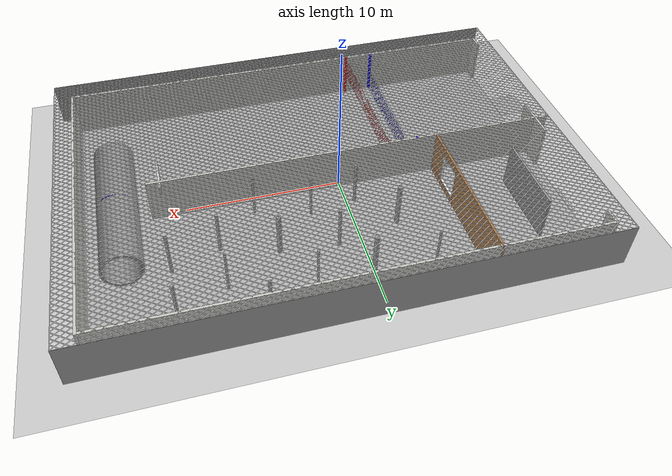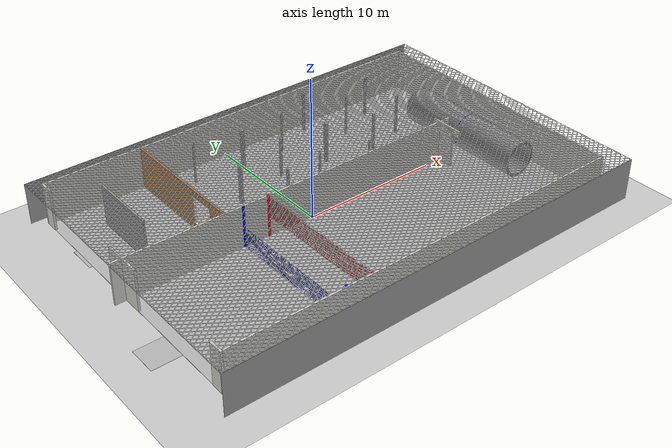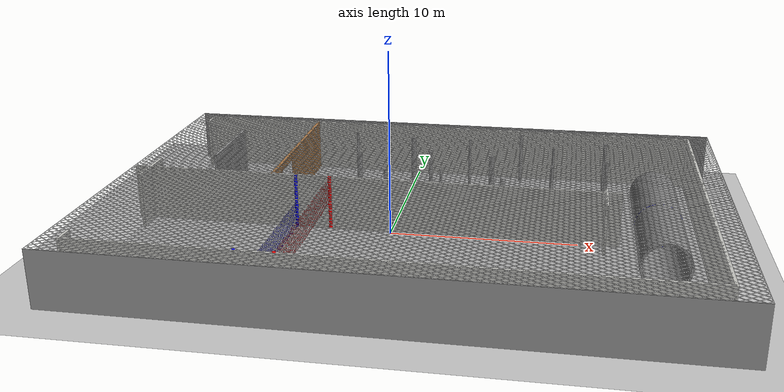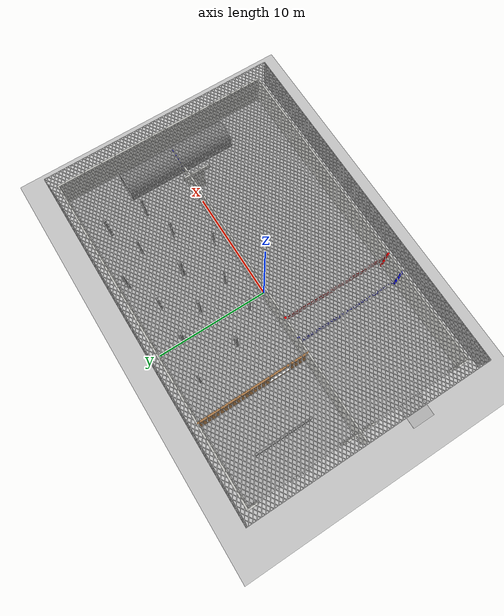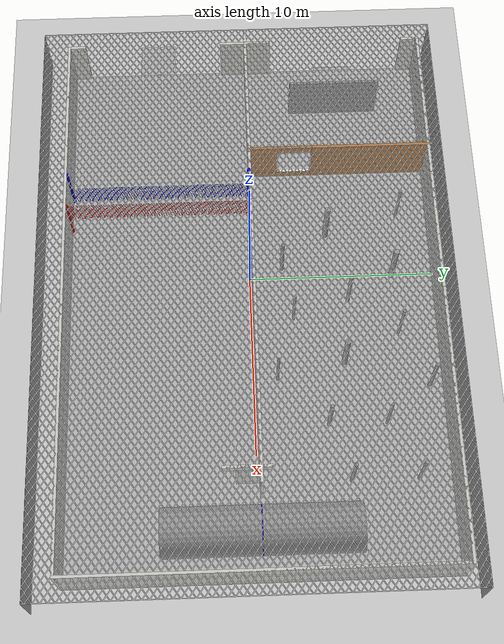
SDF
<sdf version="1.6">
 <world name="default">
  <light name="sun" type="directional">
   <pose>0 0 10 0 -0 0</pose>
   <diffuse>0.8 0.8 0.8 1</diffuse>
   <specular>0.1 0.1 0.1 1</specular>
   <attenuation>
    <range>1000</range>
    <constant>0.9</constant>
    <linear>0.01</linear>
    <quadratic>0.001</quadratic>
   </attenuation>
   <direction>-0.1 0.1 -1</direction>
  </light>
  <model name="ground_plane">
   <static>1</static>
   <link name="link">
    <collision name="collision">
     <geometry><plane><normal>0 0 1</normal><size>100 100</size></plane></geometry>
     <surface><friction><ode><mu>100</mu><mu2>50</mu2></ode></friction></surface>
    </collision>
    <visual name="visual">
     <cast_shadows>0</cast_shadows>
     <geometry><plane><normal>0 0 1</normal><size>100 100</size></plane></geometry>
     <material>
      <script><uri>file://media/materials/scripts/gazebo.material</uri><name>Gazebo/Grey</name></script>
     </material>
    </visual>
   </link>
  </model>
  <gravity>0 0 -9.8</gravity>
  <magnetic_field>6e-06 2.3e-05 -4.2e-05</magnetic_field>
  <atmosphere type="adiabatic"/>
  <physics name="default_physics" default="0" type="ode">
   <max_step_size>0.001</max_step_size>
   <real_time_factor>1</real_time_factor>
   <real_time_update_rate>1000</real_time_update_rate>
  </physics>
  <scene><ambient>0.4 0.4 0.4 1</ambient><background>0.7 0.7 0.7 1</background><shadows>1</shadows></scene>
  <spherical_coordinates>
   <surface_model>EARTH_WGS84</surface_model>
   <latitude_deg>0</latitude_deg>
   <longitude_deg>0</longitude_deg>
   <elevation>0</elevation>
   <heading_deg>0</heading_deg>
  </spherical_coordinates>
  <model name="my_ground_plane">
   <static>1</static>
   <link name="link">
    <collision name="collision">
     <geometry><plane><normal>0 0 1</normal><size>30 20</size></plane></geometry>
     <surface><friction><ode><mu>100</mu><mu2>50</mu2></ode></friction></surface>
    </collision>
    <visual name="visual">
     <cast_shadows>0</cast_shadows>
     <geometry><plane><normal>0 0 1</normal><size>30 20</size></plane></geometry>
     <material>
      <script>
       <uri>model://my_ground_plane/materials/scripts_30</uri>
       <uri>model://my_ground_plane/materials/textures/</uri>
       <name>MyGroundPlane/Image</name>
      </script>
     </material>
    </visual>
   </link>
   <pose>1.42327 0.152934 0 0 -0 0</pose>
  </model>
  <model name="robot_house2_0">
   <pose>1.40144 0.109939 0 0 -0 0</pose>
   <link name="Wall_0">
    <collision name="Wall_0_Collision">
     <geometry><box><size>30 0.15 3</size></box></geometry>
     <pose>0 0 1.5 0 -0 0</pose>
    </collision>
    <visual name="Wall_0_Visual">
     <pose>0 0 1.5 0 -0 0</pose>
     <geometry><box><size>30 0.15 3</size></box></geometry>
     <material>
      <script><uri>file://media/materials/scripts/gazebo.material</uri><name>Gazebo/CeilingTiled</name></script>
      <ambient>1 1 1 1</ambient>
     </material>
    </visual>
    <pose>-1e-06 9.92401 0 0 -0 0</pose>
   </link>
   <link name="Wall_1">
    <collision name="Wall_1_Collision">
     <geometry><box><size>20 0.15 3</size></box></geometry>
     <pose>0 0 1.5 0 -0 0</pose>
    </collision>
    <visual name="Wall_1_Visual">
     <pose>0 0 1.5 0 -0 0</pose>
     <geometry><box><size>20 0.15 3</size></box></geometry>
     <material>
      <script><uri>file://media/materials/scripts/gazebo.material</uri><name>Gazebo/CeilingTiled</name></script>
      <ambient>1 1 1 1</ambient>
     </material>
    </visual>
    <pose>14.925 -0.00099 0 0 0 -1.5708</pose>
   </link>
   <link name="Wall_11">
    <collision name="Wall_11_Collision">
     <geometry><box><size>1.5 0.15 3</size></box></geometry>
     <pose>0 0 1.5 0 -0 0</pose>
    </collision>
    <visual name="Wall_11_Visual">
     <pose>0 0 1.5 0 -0 0</pose>
     <geometry><box><size>1.5 0.15 3</size></box></geometry>
     <material>
      <script><uri>file://media/materials/scripts/gazebo.material</uri><name>Gazebo/CeilingTiled</name></script>
      <ambient>1 1 1 1</ambient>
     </material>
    </visual>
    <pose>-14.925 0.74901 0 0 -0 1.5708</pose>
   </link>
   <link name="Wall_14">
    <collision name="Wall_14_Collision">
     <geometry><box><size>5 0.15 3</size></box></geometry>
     <pose>0 1 1.5 0 -0 0</pose>
    </collision>
    <visual name="Wall_14_Visual">
     <pose>0 1 1.5 0 -0 0</pose>
     <geometry><box><size>5 0.15 3</size></box></geometry>
     <material>
      <script><uri>file://media/materials/scripts/gazebo.material</uri><name>Gazebo/Grey</name></script>
      <ambient>1 1 1 1</ambient>
     </material>
    </visual>
    <pose>-13.075 4.99901 0 0 0 -1.5708</pose>
   </link>
   <link name="Wall_16">
    <collision name="Wall_16_Collision">
     <geometry><box><size>1.5 0.15 3</size></box></geometry>
     <pose>0 0 1.5 0 -0 0</pose>
    </collision>
    <visual name="Wall_16_Visual">
     <pose>0 0 1.5 0 -0 0</pose>
     <geometry><box><size>1.5 0.15 3</size></box></geometry>
     <material>
      <script><uri>file://media/materials/scripts/gazebo.material</uri><name>Gazebo/CeilingTiled</name></script>
      <ambient>1 1 1 1</ambient>
     </material>
    </visual>
    <pose>-14.925 -0.60099 0 0 0 -1.5708</pose>
   </link>
   <link name="Wall_2">
    <collision name="Wall_2_Collision">
     <geometry><box><size>30 0.15 3</size></box></geometry>
     <pose>0 0 1.5 0 -0 0</pose>
    </collision>
    <visual name="Wall_2_Visual">
     <pose>0 0 1.5 0 -0 0</pose>
     <geometry><box><size>30 0.15 3</size></box></geometry>
     <material>
      <script><uri>file://media/materials/scripts/gazebo.material</uri><name>Gazebo/CeilingTiled</name></script>
      <ambient>1 1 1 1</ambient>
     </material>
    </visual>
    <pose>-1e-06 -9.92599 0 0 -0 3.14159</pose>
   </link>
   <link name="Wall_21">
    <collision name="Wall_21_Collision">
     <geometry><box><size>1.19 0.15 3</size></box></geometry>
     <pose>0 0 1.5 0 -0 0</pose>
    </collision>
    <visual name="Wall_21_Visual">
     <pose>0 0 1.5 0 -0 0</pose>
     <geometry><box><size>1.19 0.15 3</size></box></geometry>
     <material>
      <script><uri>file://media/materials/scripts/gazebo.material</uri><name>Gazebo/CeilingTiled</name></script>
      <ambient>1 1 1 1</ambient>
     </material>
    </visual>
    <pose>9.925 -0.60099 0 0 0 -1.5708</pose>
   </link>
   <link name="Wall_23">
    <collision name="Wall_23_Collision">
     <geometry><box><size>2.5 0.15 0.5</size></box></geometry>
     <pose>0 0 2.75 0 -0 0</pose>
    </collision>
    <visual name="Wall_23_Visual">
     <pose>0 0 2.75 0 -0 0</pose>
     <geometry><box><size>2.5 0.15 0.5</size></box></geometry>
     <material>
      <script><uri>file://media/materials/scripts/gazebo.material</uri><name>Gazebo/CeilingTiled</name></script>
      <ambient>1 1 1 1</ambient>
     </material>
    </visual>
    <pose>9.925 -0.60099 0 0 0 -1.5708</pose>
   </link>
   <link name="Wall_22">
    <collision name="Wall_22_Collision">
     <geometry><box><size>1 0.15 3</size></box></geometry>
     <pose>0 0 1.5 0 -0 0</pose>
    </collision>
    <visual name="Wall_22_Visual">
     <pose>0 0 1.5 0 -0 0</pose>
     <geometry><box><size>1 0.15 3</size></box></geometry>
     <material>
      <script><uri>file://media/materials/scripts/gazebo.material</uri><name>Gazebo/CeilingTiled</name></script>
      <ambient>1 1 1 1</ambient>
     </material>
    </visual>
    <pose>-14.925 -9.50099 0 0 -0 1.5708</pose>
   </link>
   <link name="Wall_5">
    <collision name="Wall_5_Collision">
     <geometry><box><size>26.5 0.15 3</size></box></geometry>
     <pose>0 0 1.5 0 -0 0</pose>
    </collision>
    <visual name="Wall_5_Visual">
     <pose>0 0 1.5 0 -0 0</pose>
     <geometry><box><size>26.5 0.15 3</size></box></geometry>
     <material>
      <script><uri>file://media/materials/scripts/gazebo.material</uri><name>Gazebo/CeilingTiled</name></script>
      <ambient>1 1 1 1</ambient>
     </material>
    </visual>
    <pose>-2.5 0.07401 0 0 -0 0</pose>
   </link>
   <link name="Wall_7">
    <pose>-7.925 5.00101 0 0 0 -1.5708</pose>
    <visual name="Wall_7_Visual_0">
     <pose>-1.7615 0 1.5 0 -0 0</pose>
     <geometry><box><size>6.477 0.15 3</size></box></geometry>
     <material>
      <script><uri>file://media/materials/scripts/gazebo.material</uri><name>Gazebo/Wood</name></script>
      <ambient>1 1 1 1</ambient>
     </material>
    </visual>
    <collision name="Wall_7_Collision_0">
     <geometry><box><size>6.477 0.15 3</size></box></geometry>
     <pose>-1.7615 0 1.5 0 -0 0</pose>
    </collision>
    <visual name="Wall_7_Visual_1">
     <pose>3.2385 0 0.225 0 -0 0</pose>
     <geometry><box><size>3.523 0.15 0.45</size></box></geometry>
     <material>
      <script><uri>file://media/materials/scripts/gazebo.material</uri><name>Gazebo/Wood</name></script>
      <ambient>1 1 1 1</ambient>
     </material>
    </visual>
    <collision name="Wall_7_Collision_1">
     <geometry><box><size>3.523 0.15 0.45</size></box></geometry>
     <pose>3.2385 0 0.225 0 -0 0</pose>
    </collision>
    <visual name="Wall_7_Visual_2">
     <pose>4.1885 0 1.725 0 -0 0</pose>
     <geometry><box><size>1.623 0.15 2.55</size></box></geometry>
     <material>
      <script><uri>file://media/materials/scripts/gazebo.material</uri><name>Gazebo/Wood</name></script>
      <ambient>1 1 1 1</ambient>
     </material>
    </visual>
    <collision name="Wall_7_Collision_2">
     <geometry><box><size>1.623 0.15 2.55</size></box></geometry>
     <pose>4.1885 0 1.725 0 -0 0</pose>
    </collision>
    <visual name="Wall_7_Visual_3">
     <pose>2.427 0 2.775 0 -0 0</pose>
     <geometry><box><size>1.9 0.15 0.45</size></box></geometry>
     <material>
      <script><uri>file://media/materials/scripts/gazebo.material</uri><name>Gazebo/Wood</name></script>
      <ambient>1 1 1 1</ambient>
     </material>
    </visual>
    <collision name="Wall_7_Collision_3">
     <geometry><box><size>1.9 0.15 0.45</size></box></geometry>
     <pose>2.427 0 2.775 0 -0 0</pose>
    </collision>
   </link>
   <link name="Wall_24">
    <pose>-7.925 5.00101 0 0 0 -1.5708</pose>
    <visual name="Wall_24_Visual_0">
     <pose>1.502 0 1.5 0 -0 0</pose>
     <geometry><box><size>0.05 0.15 2.1</size></box></geometry>
     <material>
      <ambient>1 1 1 1</ambient>
      <diffuse>1 1 1 1</diffuse>
      <specular>0 0 0 0</specular>
      <emissive>0 0 0 1</emissive>
     </material>
    </visual>
    <collision name="Wall_24_Collision_0">
     <geometry><box><size>0.05 0.15 2.1</size></box></geometry>
     <pose>1.502 0 1.5 0 -0 0</pose>
    </collision>
    <visual name="Wall_24_Visual_1">
     <pose>2.427 0 0.475 0 -0 0</pose>
     <geometry><box><size>1.85 0.15 0.05</size></box></geometry>
     <material>
      <ambient>1 1 1 1</ambient>
      <diffuse>1 1 1 1</diffuse>
      <specular>0 0 0 0</specular>
      <emissive>0 0 0 1</emissive>
     </material>
    </visual>
    <collision name="Wall_24_Collision_1">
     <geometry><box><size>1.85 0.15 0.05</size></box></geometry>
     <pose>2.427 0 0.475 0 -0 0</pose>
    </collision>
    <visual name="Wall_24_Visual_2">
     <pose>3.352 0 1.475 0 -0 0</pose>
     <geometry><box><size>0.05 0.15 2.05</size></box></geometry>
     <material>
      <ambient>1 1 1 1</ambient>
      <diffuse>1 1 1 1</diffuse>
      <specular>0 0 0 0</specular>
      <emissive>0 0 0 1</emissive>
     </material>
    </visual>
    <collision name="Wall_24_Collision_2">
     <geometry><box><size>0.05 0.15 2.05</size></box></geometry>
     <pose>3.352 0 1.475 0 -0 0</pose>
    </collision>
    <visual name="Wall_24_Visual_3">
     <pose>2.452 0 2.525 0 -0 0</pose>
     <geometry><box><size>1.85 0.15 0.05</size></box></geometry>
     <material>
      <ambient>1 1 1 1</ambient>
      <diffuse>1 1 1 1</diffuse>
      <specular>0 0 0 0</specular>
      <emissive>0 0 0 1</emissive>
     </material>
    </visual>
    <collision name="Wall_24_Collision_3">
     <geometry><box><size>1.85 0.15 0.05</size></box></geometry>
     <pose>2.452 0 2.525 0 -0 0</pose>
    </collision>
   </link>
   <link name="Wall_9">
    <collision name="Wall_9_Collision">
     <geometry><box><size>1 0.15 3</size></box></geometry>
     <pose>0 0 1.5 0 -0 0</pose>
    </collision>
    <visual name="Wall_9_Visual">
     <pose>0 0 1.5 0 -0 0</pose>
     <geometry><box><size>1 0.15 3</size></box></geometry>
     <material>
      <script><uri>file://media/materials/scripts/gazebo.material</uri><name>Gazebo/CeilingTiled</name></script>
      <ambient>1 1 1 1</ambient>
     </material>
    </visual>
    <pose>-14.925 9.49901 0 0 0 -1.5708</pose>
   </link>
   <static>1</static>
  </model>
  <model name="start_0">
   <static>1</static>
   <pose>-12.7927 6.76191 0 0 -0 0</pose>
   <link name="box">
    <pose>0 -1.5 0 0 -0 0</pose>
    <collision name="collision"><geometry><box><size>2 2 0.01</size></box></geometry></collision>
    <visual name="visual">
     <geometry><box><size>2 2 0.01</size></box></geometry>
     <material>
      <script>
       <uri>model://start/materials/scripts</uri>
       <uri>model://start/materials/textures</uri>
       <name>TexturedShape/Start</name>
      </script>
     </material>
    </visual>
   </link>
  </model>
  <model name="cylinderset_iitp">
   <static>1</static>
   <link name="link_2">
    <pose>-8.32014 3.57239 1.5 0 -0 0</pose>
    <inertial>
     <mass>1</mass>
     <inertia><ixx>0.145833</ixx><ixy>0</ixy><ixz>0</ixz><iyy>0.145833</iyy><iyz>0</iyz><izz>0.125</izz></inertia>
    </inertial>
    <visual name="visual">
     <geometry><cylinder><radius>0.075</radius><length>3</length></cylinder></geometry>
     <material>
      <lighting>1</lighting>
      <script><uri>file://media/materials/scripts/gazebo.material</uri><name>Gazebo/Grey</name></script>
      <ambient>0.3 0.3 0.3 1</ambient>
      <diffuse>0.7 0.7 0.7 1</diffuse>
      <specular>0.01 0.01 0.01 1</specular>
      <emissive>0 0 0 1</emissive>
      <shader type="vertex"><normal_map>__default__</normal_map></shader>
     </material>
    </visual>
    <collision name="collision">
     <geometry><cylinder><radius>0.075</radius><length>3</length></cylinder></geometry>
     <surface>
      <friction>
       <ode><mu>1</mu><mu2>1</mu2><fdir1>0 0 0</fdir1><slip1>0</slip1><slip2>0</slip2></ode>
       <torsional>
        <coefficient>1</coefficient>
        <patch_radius>0</patch_radius>
        <surface_radius>0</surface_radius>
        <use_patch_radius>1</use_patch_radius>
        <ode><slip>0</slip></ode>
       </torsional>
      </friction>
      <bounce><restitution_coefficient>0</restitution_coefficient><threshold>1e+06</threshold></bounce>
      <contact>
       <collide_without_contact>0</collide_without_contact>
       <collide_without_contact_bitmask>1</collide_without_contact_bitmask>
       <collide_bitmask>1</collide_bitmask>
       <ode>
        <soft_cfm>0</soft_cfm>
        <soft_erp>0.2</soft_erp>
        <kp>1e+13</kp>
        <kd>1</kd>
        <max_vel>0.01</max_vel>
        <min_depth>0</min_depth>
       </ode>
       <bullet>
        <split_impulse>1</split_impulse>
        <split_impulse_penetration_threshold>-0.01</split_impulse_penetration_threshold>
        <soft_cfm>0</soft_cfm>
        <soft_erp>0.2</soft_erp>
        <kp>1e+13</kp>
        <kd>1</kd>
       </bullet>
      </contact>
     </surface>
    </collision>
   </link>
   <link name="link_2_clone">
    <pose>-7.32014 -0.427614 1.5 0 -0 0</pose>
    <inertial>
     <mass>1</mass>
     <inertia><ixx>0.145833</ixx><ixy>0</ixy><ixz>0</ixz><iyy>0.145833</iyy><iyz>0</iyz><izz>0.125</izz></inertia>
    </inertial>
    <visual name="visual">
     <geometry><cylinder><radius>0.15</radius><length>3</length></cylinder></geometry>
     <material>
      <lighting>1</lighting>
      <script><uri>file://media/materials/scripts/gazebo.material</uri><name>Gazebo/Grey</name></script>
      <ambient>0.3 0.3 0.3 1</ambient>
      <diffuse>0.7 0.7 0.7 1</diffuse>
      <specular>0.01 0.01 0.01 1</specular>
      <emissive>0 0 0 1</emissive>
      <shader type="vertex"><normal_map>__default__</normal_map></shader>
     </material>
    </visual>
    <collision name="collision">
     <geometry><cylinder><radius>0.15</radius><length>3</length></cylinder></geometry>
     <surface>
      <friction>
       <ode><mu>1</mu><mu2>1</mu2><fdir1>0 0 0</fdir1><slip1>0</slip1><slip2>0</slip2></ode>
       <torsional>
        <coefficient>1</coefficient>
        <patch_radius>0</patch_radius>
        <surface_radius>0</surface_radius>
        <use_patch_radius>1</use_patch_radius>
        <ode><slip>0</slip></ode>
       </torsional>
      </friction>
      <bounce><restitution_coefficient>0</restitution_coefficient><threshold>1e+06</threshold></bounce>
      <contact>
       <collide_without_contact>0</collide_without_contact>
       <collide_without_contact_bitmask>1</collide_without_contact_bitmask>
       <collide_bitmask>1</collide_bitmask>
       <ode>
        <soft_cfm>0</soft_cfm>
        <soft_erp>0.2</soft_erp>
        <kp>1e+13</kp>
        <kd>1</kd>
        <max_vel>0.01</max_vel>
        <min_depth>0</min_depth>
       </ode>
       <bullet>
        <split_impulse>1</split_impulse>
        <split_impulse_penetration_threshold>-0.01</split_impulse_penetration_threshold>
        <soft_cfm>0</soft_cfm>
        <soft_erp>0.2</soft_erp>
        <kp>1e+13</kp>
        <kd>1</kd>
       </bullet>
      </contact>
     </surface>
    </collision>
   </link>
   <link name="link_2_clone_0">
    <pose>-5.32014 -2.92155 1.5 0 -0 0</pose>
    <inertial>
     <mass>1</mass>
     <inertia><ixx>0.145833</ixx><ixy>0</ixy><ixz>0</ixz><iyy>0.145833</iyy><iyz>0</iyz><izz>0.125</izz></inertia>
    </inertial>
    <visual name="visual">
     <geometry><cylinder><radius>0.1</radius><length>3</length></cylinder></geometry>
     <material>
      <lighting>1</lighting>
      <script><uri>file://media/materials/scripts/gazebo.material</uri><name>Gazebo/Grey</name></script>
      <ambient>0.3 0.3 0.3 1</ambient>
      <diffuse>0.7 0.7 0.7 1</diffuse>
      <specular>0.01 0.01 0.01 1</specular>
      <emissive>0 0 0 1</emissive>
      <shader type="vertex"><normal_map>__default__</normal_map></shader>
     </material>
    </visual>
    <collision name="collision">
     <geometry><cylinder><radius>0.1</radius><length>3</length></cylinder></geometry>
     <surface>
      <friction>
       <ode><mu>1</mu><mu2>1</mu2><fdir1>0 0 0</fdir1><slip1>0</slip1><slip2>0</slip2></ode>
       <torsional>
        <coefficient>1</coefficient>
        <patch_radius>0</patch_radius>
        <surface_radius>0</surface_radius>
        <use_patch_radius>1</use_patch_radius>
        <ode><slip>0</slip></ode>
       </torsional>
      </friction>
      <bounce><restitution_coefficient>0</restitution_coefficient><threshold>1e+06</threshold></bounce>
      <contact>
       <collide_without_contact>0</collide_without_contact>
       <collide_without_contact_bitmask>1</collide_without_contact_bitmask>
       <collide_bitmask>1</collide_bitmask>
       <ode>
        <soft_cfm>0</soft_cfm>
        <soft_erp>0.2</soft_erp>
        <kp>1e+13</kp>
        <kd>1</kd>
        <max_vel>0.01</max_vel>
        <min_depth>0</min_depth>
       </ode>
       <bullet>
        <split_impulse>1</split_impulse>
        <split_impulse_penetration_threshold>-0.01</split_impulse_penetration_threshold>
        <soft_cfm>0</soft_cfm>
        <soft_erp>0.2</soft_erp>
        <kp>1e+13</kp>
        <kd>1</kd>
       </bullet>
      </contact>
     </surface>
    </collision>
   </link>
   <link name="link_2_clone_0_clone">
    <pose>-3.32014 0.572386 1.5 0 -0 0</pose>
    <inertial>
     <mass>1</mass>
     <inertia><ixx>0.145833</ixx><ixy>0</ixy><ixz>0</ixz><iyy>0.145833</iyy><iyz>0</iyz><izz>0.125</izz></inertia>
    </inertial>
    <visual name="visual">
     <geometry><cylinder><radius>0.1</radius><length>3</length></cylinder></geometry>
     <material>
      <lighting>1</lighting>
      <script><uri>file://media/materials/scripts/gazebo.material</uri><name>Gazebo/Grey</name></script>
      <ambient>0.3 0.3 0.3 1</ambient>
      <diffuse>0.7 0.7 0.7 1</diffuse>
      <specular>0.01 0.01 0.01 1</specular>
      <emissive>0 0 0 1</emissive>
      <shader type="vertex"><normal_map>__default__</normal_map></shader>
     </material>
    </visual>
    <collision name="collision">
     <geometry><cylinder><radius>0.1</radius><length>3</length></cylinder></geometry>
     <surface>
      <friction>
       <ode><mu>1</mu><mu2>1</mu2><fdir1>0 0 0</fdir1><slip1>0</slip1><slip2>0</slip2></ode>
       <torsional>
        <coefficient>1</coefficient>
        <patch_radius>0</patch_radius>
        <surface_radius>0</surface_radius>
        <use_patch_radius>1</use_patch_radius>
        <ode><slip>0</slip></ode>
       </torsional>
      </friction>
      <bounce><restitution_coefficient>0</restitution_coefficient><threshold>1e+06</threshold></bounce>
      <contact>
       <collide_without_contact>0</collide_without_contact>
       <collide_without_contact_bitmask>1</collide_without_contact_bitmask>
       <collide_bitmask>1</collide_bitmask>
       <ode>
        <soft_cfm>0</soft_cfm>
        <soft_erp>0.2</soft_erp>
        <kp>1e+13</kp>
        <kd>1</kd>
        <max_vel>0.01</max_vel>
        <min_depth>0</min_depth>
       </ode>
       <bullet>
        <split_impulse>1</split_impulse>
        <split_impulse_penetration_threshold>-0.01</split_impulse_penetration_threshold>
        <soft_cfm>0</soft_cfm>
        <soft_erp>0.2</soft_erp>
        <kp>1e+13</kp>
        <kd>1</kd>
       </bullet>
      </contact>
     </surface>
    </collision>
   </link>
   <link name="link_2_clone_0_clone_clone">
    <pose>3.67986 -0.866514 1.5 0 -0 0</pose>
    <inertial>
     <mass>1</mass>
     <inertia><ixx>0.145833</ixx><ixy>0</ixy><ixz>0</ixz><iyy>0.145833</iyy><iyz>0</iyz><izz>0.125</izz></inertia>
    </inertial>
    <visual name="visual">
     <geometry><cylinder><radius>0.1</radius><length>3</length></cylinder></geometry>
     <material>
      <lighting>1</lighting>
      <script><uri>file://media/materials/scripts/gazebo.material</uri><name>Gazebo/Grey</name></script>
      <ambient>0.3 0.3 0.3 1</ambient>
      <diffuse>0.7 0.7 0.7 1</diffuse>
      <specular>0.01 0.01 0.01 1</specular>
      <emissive>0 0 0 1</emissive>
      <shader type="vertex"><normal_map>__default__</normal_map></shader>
     </material>
    </visual>
    <collision name="collision">
     <geometry><cylinder><radius>0.1</radius><length>3</length></cylinder></geometry>
     <surface>
      <friction>
       <ode><mu>1</mu><mu2>1</mu2><fdir1>0 0 0</fdir1><slip1>0</slip1><slip2>0</slip2></ode>
       <torsional>
        <coefficient>1</coefficient>
        <patch_radius>0</patch_radius>
        <surface_radius>0</surface_radius>
        <use_patch_radius>1</use_patch_radius>
        <ode><slip>0</slip></ode>
       </torsional>
      </friction>
      <bounce><restitution_coefficient>0</restitution_coefficient><threshold>1e+06</threshold></bounce>
      <contact>
       <collide_without_contact>0</collide_without_contact>
       <collide_without_contact_bitmask>1</collide_without_contact_bitmask>
       <collide_bitmask>1</collide_bitmask>
       <ode>
        <soft_cfm>0</soft_cfm>
        <soft_erp>0.2</soft_erp>
        <kp>1e+13</kp>
        <kd>1</kd>
        <max_vel>0.01</max_vel>
        <min_depth>0</min_depth>
       </ode>
       <bullet>
        <split_impulse>1</split_impulse>
        <split_impulse_penetration_threshold>-0.01</split_impulse_penetration_threshold>
        <soft_cfm>0</soft_cfm>
        <soft_erp>0.2</soft_erp>
        <kp>1e+13</kp>
        <kd>1</kd>
       </bullet>
      </contact>
     </surface>
    </collision>
   </link>
   <link name="link_2_clone_0_clone_clone_0">
    <pose>1.67986 4.57239 1.5 0 -0 0</pose>
    <inertial>
     <mass>1</mass>
     <inertia><ixx>0.145833</ixx><ixy>0</ixy><ixz>0</ixz><iyy>0.145833</iyy><iyz>0</iyz><izz>0.125</izz></inertia>
    </inertial>
    <visual name="visual">
     <geometry><cylinder><radius>0.1</radius><length>3</length></cylinder></geometry>
     <material>
      <lighting>1</lighting>
      <script><uri>file://media/materials/scripts/gazebo.material</uri><name>Gazebo/Grey</name></script>
      <ambient>0.3 0.3 0.3 1</ambient>
      <diffuse>0.7 0.7 0.7 1</diffuse>
      <specular>0.01 0.01 0.01 1</specular>
      <emissive>0 0 0 1</emissive>
      <shader type="vertex"><normal_map>__default__</normal_map></shader>
     </material>
    </visual>
    <collision name="collision">
     <geometry><cylinder><radius>0.1</radius><length>3</length></cylinder></geometry>
     <surface>
      <friction>
       <ode><mu>1</mu><mu2>1</mu2><fdir1>0 0 0</fdir1><slip1>0</slip1><slip2>0</slip2></ode>
       <torsional>
        <coefficient>1</coefficient>
        <patch_radius>0</patch_radius>
        <surface_radius>0</surface_radius>
        <use_patch_radius>1</use_patch_radius>
        <ode><slip>0</slip></ode>
       </torsional>
      </friction>
      <bounce><restitution_coefficient>0</restitution_coefficient><threshold>1e+06</threshold></bounce>
      <contact>
       <collide_without_contact>0</collide_without_contact>
       <collide_without_contact_bitmask>1</collide_without_contact_bitmask>
       <collide_bitmask>1</collide_bitmask>
       <ode>
        <soft_cfm>0</soft_cfm>
        <soft_erp>0.2</soft_erp>
        <kp>1e+13</kp>
        <kd>1</kd>
        <max_vel>0.01</max_vel>
        <min_depth>0</min_depth>
       </ode>
       <bullet>
        <split_impulse>1</split_impulse>
        <split_impulse_penetration_threshold>-0.01</split_impulse_penetration_threshold>
        <soft_cfm>0</soft_cfm>
        <soft_erp>0.2</soft_erp>
        <kp>1e+13</kp>
        <kd>1</kd>
       </bullet>
      </contact>
     </surface>
    </collision>
   </link>
   <link name="link_2_clone_0_clone_clone_clone">
    <pose>6.67986 3.57239 1.5 0 -0 0</pose>
    <inertial>
     <mass>1</mass>
     <inertia><ixx>0.145833</ixx><ixy>0</ixy><ixz>0</ixz><iyy>0.145833</iyy><iyz>0</iyz><izz>0.125</izz></inertia>
    </inertial>
    <visual name="visual">
     <geometry><cylinder><radius>0.1</radius><length>3</length></cylinder></geometry>
     <material>
      <lighting>1</lighting>
      <script><uri>file://media/materials/scripts/gazebo.material</uri><name>Gazebo/Grey</name></script>
      <ambient>0.3 0.3 0.3 1</ambient>
      <diffuse>0.7 0.7 0.7 1</diffuse>
      <specular>0.01 0.01 0.01 1</specular>
      <emissive>0 0 0 1</emissive>
      <shader type="vertex"><normal_map>__default__</normal_map></shader>
     </material>
    </visual>
    <collision name="collision">
     <geometry><cylinder><radius>0.1</radius><length>3</length></cylinder></geometry>
     <surface>
      <friction>
       <ode><mu>1</mu><mu2>1</mu2><fdir1>0 0 0</fdir1><slip1>0</slip1><slip2>0</slip2></ode>
       <torsional>
        <coefficient>1</coefficient>
        <patch_radius>0</patch_radius>
        <surface_radius>0</surface_radius>
        <use_patch_radius>1</use_patch_radius>
        <ode><slip>0</slip></ode>
       </torsional>
      </friction>
      <bounce><restitution_coefficient>0</restitution_coefficient><threshold>1e+06</threshold></bounce>
      <contact>
       <collide_without_contact>0</collide_without_contact>
       <collide_without_contact_bitmask>1</collide_without_contact_bitmask>
       <collide_bitmask>1</collide_bitmask>
       <ode>
        <soft_cfm>0</soft_cfm>
        <soft_erp>0.2</soft_erp>
        <kp>1e+13</kp>
        <kd>1</kd>
        <max_vel>0.01</max_vel>
        <min_depth>0</min_depth>
       </ode>
       <bullet>
        <split_impulse>1</split_impulse>
        <split_impulse_penetration_threshold>-0.01</split_impulse_penetration_threshold>
        <soft_cfm>0</soft_cfm>
        <soft_erp>0.2</soft_erp>
        <kp>1e+13</kp>
        <kd>1</kd>
       </bullet>
      </contact>
     </surface>
    </collision>
   </link>
   <link name="link_2_clone_0_clone_clone_clone_0">
    <pose>6.67986 0.107852 1.5 0 -0 0</pose>
    <inertial>
     <mass>1</mass>
     <inertia><ixx>0.145833</ixx><ixy>0</ixy><ixz>0</ixz><iyy>0.145833</iyy><iyz>0</iyz><izz>0.125</izz></inertia>
    </inertial>
    <visual name="visual">
     <geometry><cylinder><radius>0.1</radius><length>3</length></cylinder></geometry>
     <material>
      <lighting>1</lighting>
      <script><uri>file://media/materials/scripts/gazebo.material</uri><name>Gazebo/Grey</name></script>
      <ambient>0.3 0.3 0.3 1</ambient>
      <diffuse>0.7 0.7 0.7 1</diffuse>
      <specular>0.01 0.01 0.01 1</specular>
      <emissive>0 0 0 1</emissive>
      <shader type="vertex"><normal_map>__default__</normal_map></shader>
     </material>
    </visual>
    <collision name="collision">
     <geometry><cylinder><radius>0.1</radius><length>3</length></cylinder></geometry>
     <surface>
      <friction>
       <ode><mu>1</mu><mu2>1</mu2><fdir1>0 0 0</fdir1><slip1>0</slip1><slip2>0</slip2></ode>
       <torsional>
        <coefficient>1</coefficient>
        <patch_radius>0</patch_radius>
        <surface_radius>0</surface_radius>
        <use_patch_radius>1</use_patch_radius>
        <ode><slip>0</slip></ode>
       </torsional>
      </friction>
      <bounce><restitution_coefficient>0</restitution_coefficient><threshold>1e+06</threshold></bounce>
      <contact>
       <collide_without_contact>0</collide_without_contact>
       <collide_without_contact_bitmask>1</collide_without_contact_bitmask>
       <collide_bitmask>1</collide_bitmask>
       <ode>
        <soft_cfm>0</soft_cfm>
        <soft_erp>0.2</soft_erp>
        <kp>1e+13</kp>
        <kd>1</kd>
        <max_vel>0.01</max_vel>
        <min_depth>0</min_depth>
       </ode>
       <bullet>
        <split_impulse>1</split_impulse>
        <split_impulse_penetration_threshold>-0.01</split_impulse_penetration_threshold>
        <soft_cfm>0</soft_cfm>
        <soft_erp>0.2</soft_erp>
        <kp>1e+13</kp>
        <kd>1</kd>
       </bullet>
      </contact>
     </surface>
    </collision>
   </link>
   <link name="link_2_clone_1">
    <pose>-2.32014 -2.42761 1.5 0 -0 0</pose>
    <inertial>
     <mass>1</mass>
     <inertia><ixx>0.145833</ixx><ixy>0</ixy><ixz>0</ixz><iyy>0.145833</iyy><iyz>0</iyz><izz>0.125</izz></inertia>
    </inertial>
    <visual name="visual">
     <geometry><cylinder><radius>0.075</radius><length>3</length></cylinder></geometry>
     <material>
      <lighting>1</lighting>
      <script><uri>file://media/materials/scripts/gazebo.material</uri><name>Gazebo/Grey</name></script>
      <ambient>0.3 0.3 0.3 1</ambient>
      <diffuse>0.7 0.7 0.7 1</diffuse>
      <specular>0.01 0.01 0.01 1</specular>
      <emissive>0 0 0 1</emissive>
      <shader type="vertex"><normal_map>__default__</normal_map></shader>
     </material>
    </visual>
    <collision name="collision">
     <geometry><cylinder><radius>0.075</radius><length>3</length></cylinder></geometry>
     <surface>
      <friction>
       <ode><mu>1</mu><mu2>1</mu2><fdir1>0 0 0</fdir1><slip1>0</slip1><slip2>0</slip2></ode>
       <torsional>
        <coefficient>1</coefficient>
        <patch_radius>0</patch_radius>
        <surface_radius>0</surface_radius>
        <use_patch_radius>1</use_patch_radius>
        <ode><slip>0</slip></ode>
       </torsional>
      </friction>
      <bounce><restitution_coefficient>0</restitution_coefficient><threshold>1e+06</threshold></bounce>
      <contact>
       <collide_without_contact>0</collide_without_contact>
       <collide_without_contact_bitmask>1</collide_without_contact_bitmask>
       <collide_bitmask>1</collide_bitmask>
       <ode>
        <soft_cfm>0</soft_cfm>
        <soft_erp>0.2</soft_erp>
        <kp>1e+13</kp>
        <kd>1</kd>
        <max_vel>0.01</max_vel>
        <min_depth>0</min_depth>
       </ode>
       <bullet>
        <split_impulse>1</split_impulse>
        <split_impulse_penetration_threshold>-0.01</split_impulse_penetration_threshold>
        <soft_cfm>0</soft_cfm>
        <soft_erp>0.2</soft_erp>
        <kp>1e+13</kp>
        <kd>1</kd>
       </bullet>
      </contact>
     </surface>
    </collision>
   </link>
   <link name="link_2_clone_2">
    <pose>-1.32014 3.16828 1.5 0 -0 0</pose>
    <inertial>
     <mass>1</mass>
     <inertia><ixx>0.145833</ixx><ixy>0</ixy><ixz>0</ixz><iyy>0.145833</iyy><iyz>0</iyz><izz>0.125</izz></inertia>
    </inertial>
    <visual name="visual">
     <geometry><cylinder><radius>0.075</radius><length>3</length></cylinder></geometry>
     <material>
      <lighting>1</lighting>
      <script><uri>file://media/materials/scripts/gazebo.material</uri><name>Gazebo/Grey</name></script>
      <ambient>0.3 0.3 0.3 1</ambient>
      <diffuse>0.7 0.7 0.7 1</diffuse>
      <specular>0.01 0.01 0.01 1</specular>
      <emissive>0 0 0 1</emissive>
      <shader type="vertex"><normal_map>__default__</normal_map></shader>
     </material>
    </visual>
    <collision name="collision">
     <geometry><cylinder><radius>0.075</radius><length>3</length></cylinder></geometry>
     <surface>
      <friction>
       <ode><mu>1</mu><mu2>1</mu2><fdir1>0 0 0</fdir1><slip1>0</slip1><slip2>0</slip2></ode>
       <torsional>
        <coefficient>1</coefficient>
        <patch_radius>0</patch_radius>
        <surface_radius>0</surface_radius>
        <use_patch_radius>1</use_patch_radius>
        <ode><slip>0</slip></ode>
       </torsional>
      </friction>
      <bounce><restitution_coefficient>0</restitution_coefficient><threshold>1e+06</threshold></bounce>
      <contact>
       <collide_without_contact>0</collide_without_contact>
       <collide_without_contact_bitmask>1</collide_without_contact_bitmask>
       <collide_bitmask>1</collide_bitmask>
       <ode>
        <soft_cfm>0</soft_cfm>
        <soft_erp>0.2</soft_erp>
        <kp>1e+13</kp>
        <kd>1</kd>
        <max_vel>0.01</max_vel>
        <min_depth>0</min_depth>
       </ode>
       <bullet>
        <split_impulse>1</split_impulse>
        <split_impulse_penetration_threshold>-0.01</split_impulse_penetration_threshold>
        <soft_cfm>0</soft_cfm>
        <soft_erp>0.2</soft_erp>
        <kp>1e+13</kp>
        <kd>1</kd>
       </bullet>
      </contact>
     </surface>
    </collision>
   </link>
   <link name="link_2_clone_2_clone">
    <pose>3.67986 2.15275 1.5 0 -0 0</pose>
    <inertial>
     <mass>1</mass>
     <inertia><ixx>0.145833</ixx><ixy>0</ixy><ixz>0</ixz><iyy>0.145833</iyy><iyz>0</iyz><izz>0.125</izz></inertia>
    </inertial>
    <visual name="visual">
     <geometry><cylinder><radius>0.075</radius><length>3</length></cylinder></geometry>
     <material>
      <lighting>1</lighting>
      <script><uri>file://media/materials/scripts/gazebo.material</uri><name>Gazebo/Grey</name></script>
      <ambient>0.3 0.3 0.3 1</ambient>
      <diffuse>0.7 0.7 0.7 1</diffuse>
      <specular>0.01 0.01 0.01 1</specular>
      <emissive>0 0 0 1</emissive>
      <shader type="vertex"><normal_map>__default__</normal_map></shader>
     </material>
    </visual>
    <collision name="collision">
     <geometry><cylinder><radius>0.075</radius><length>3</length></cylinder></geometry>
     <surface>
      <friction>
       <ode><mu>1</mu><mu2>1</mu2><fdir1>0 0 0</fdir1><slip1>0</slip1><slip2>0</slip2></ode>
       <torsional>
        <coefficient>1</coefficient>
        <patch_radius>0</patch_radius>
        <surface_radius>0</surface_radius>
        <use_patch_radius>1</use_patch_radius>
        <ode><slip>0</slip></ode>
       </torsional>
      </friction>
      <bounce><restitution_coefficient>0</restitution_coefficient><threshold>1e+06</threshold></bounce>
      <contact>
       <collide_without_contact>0</collide_without_contact>
       <collide_without_contact_bitmask>1</collide_without_contact_bitmask>
       <collide_bitmask>1</collide_bitmask>
       <ode>
        <soft_cfm>0</soft_cfm>
        <soft_erp>0.2</soft_erp>
        <kp>1e+13</kp>
        <kd>1</kd>
        <max_vel>0.01</max_vel>
        <min_depth>0</min_depth>
       </ode>
       <bullet>
        <split_impulse>1</split_impulse>
        <split_impulse_penetration_threshold>-0.01</split_impulse_penetration_threshold>
        <soft_cfm>0</soft_cfm>
        <soft_erp>0.2</soft_erp>
        <kp>1e+13</kp>
        <kd>1</kd>
       </bullet>
      </contact>
     </surface>
    </collision>
   </link>
   <link name="link_2_clone_2_clone_0">
    <pose>1.09746 -3.42761 1.5 0 -0 0</pose>
    <inertial>
     <mass>1</mass>
     <inertia><ixx>0.145833</ixx><ixy>0</ixy><ixz>0</ixz><iyy>0.145833</iyy><iyz>0</iyz><izz>0.125</izz></inertia>
    </inertial>
    <visual name="visual">
     <geometry><cylinder><radius>0.075</radius><length>3</length></cylinder></geometry>
     <material>
      <lighting>1</lighting>
      <script><uri>file://media/materials/scripts/gazebo.material</uri><name>Gazebo/Grey</name></script>
      <ambient>0.3 0.3 0.3 1</ambient>
      <diffuse>0.7 0.7 0.7 1</diffuse>
      <specular>0.01 0.01 0.01 1</specular>
      <emissive>0 0 0 1</emissive>
      <shader type="vertex"><normal_map>__default__</normal_map></shader>
     </material>
    </visual>
    <collision name="collision">
     <geometry><cylinder><radius>0.075</radius><length>3</length></cylinder></geometry>
     <surface>
      <friction>
       <ode><mu>1</mu><mu2>1</mu2><fdir1>0 0 0</fdir1><slip1>0</slip1><slip2>0</slip2></ode>
       <torsional>
        <coefficient>1</coefficient>
        <patch_radius>0</patch_radius>
        <surface_radius>0</surface_radius>
        <use_patch_radius>1</use_patch_radius>
        <ode><slip>0</slip></ode>
       </torsional>
      </friction>
      <bounce><restitution_coefficient>0</restitution_coefficient><threshold>1e+06</threshold></bounce>
      <contact>
       <collide_without_contact>0</collide_without_contact>
       <collide_without_contact_bitmask>1</collide_without_contact_bitmask>
       <collide_bitmask>1</collide_bitmask>
       <ode>
        <soft_cfm>0</soft_cfm>
        <soft_erp>0.2</soft_erp>
        <kp>1e+13</kp>
        <kd>1</kd>
        <max_vel>0.01</max_vel>
        <min_depth>0</min_depth>
       </ode>
       <bullet>
        <split_impulse>1</split_impulse>
        <split_impulse_penetration_threshold>-0.01</split_impulse_penetration_threshold>
        <soft_cfm>0</soft_cfm>
        <soft_erp>0.2</soft_erp>
        <kp>1e+13</kp>
        <kd>1</kd>
       </bullet>
      </contact>
     </surface>
    </collision>
   </link>
   <link name="link_2_clone_clone">
    <pose>-4.73213 3.04958 1.5 0 -0 0</pose>
    <inertial>
     <mass>1</mass>
     <inertia><ixx>0.145833</ixx><ixy>0</ixy><ixz>0</ixz><iyy>0.145833</iyy><iyz>0</iyz><izz>0.125</izz></inertia>
    </inertial>
    <visual name="visual">
     <geometry><cylinder><radius>0.15</radius><length>3</length></cylinder></geometry>
     <material>
      <lighting>1</lighting>
      <script><uri>file://media/materials/scripts/gazebo.material</uri><name>Gazebo/Grey</name></script>
      <ambient>0.3 0.3 0.3 1</ambient>
      <diffuse>0.7 0.7 0.7 1</diffuse>
      <specular>0.01 0.01 0.01 1</specular>
      <emissive>0 0 0 1</emissive>
      <shader type="vertex"><normal_map>__default__</normal_map></shader>
     </material>
    </visual>
    <collision name="collision">
     <geometry><cylinder><radius>0.15</radius><length>3</length></cylinder></geometry>
     <surface>
      <friction>
       <ode><mu>1</mu><mu2>1</mu2><fdir1>0 0 0</fdir1><slip1>0</slip1><slip2>0</slip2></ode>
       <torsional>
        <coefficient>1</coefficient>
        <patch_radius>0</patch_radius>
        <surface_radius>0</surface_radius>
        <use_patch_radius>1</use_patch_radius>
        <ode><slip>0</slip></ode>
       </torsional>
      </friction>
      <bounce><restitution_coefficient>0</restitution_coefficient><threshold>1e+06</threshold></bounce>
      <contact>
       <collide_without_contact>0</collide_without_contact>
       <collide_without_contact_bitmask>1</collide_without_contact_bitmask>
       <collide_bitmask>1</collide_bitmask>
       <ode>
        <soft_cfm>0</soft_cfm>
        <soft_erp>0.2</soft_erp>
        <kp>1e+13</kp>
        <kd>1</kd>
        <max_vel>0.01</max_vel>
        <min_depth>0</min_depth>
       </ode>
       <bullet>
        <split_impulse>1</split_impulse>
        <split_impulse_penetration_threshold>-0.01</split_impulse_penetration_threshold>
        <soft_cfm>0</soft_cfm>
        <soft_erp>0.2</soft_erp>
        <kp>1e+13</kp>
        <kd>1</kd>
       </bullet>
      </contact>
     </surface>
    </collision>
   </link>
   <link name="link_2_clone_clone_clone">
    <pose>0.253044 0.158116 1.5 0 -0 0</pose>
    <inertial>
     <mass>1</mass>
     <inertia><ixx>0.145833</ixx><ixy>0</ixy><ixz>0</ixz><iyy>0.145833</iyy><iyz>0</iyz><izz>0.125</izz></inertia>
    </inertial>
    <visual name="visual">
     <geometry><cylinder><radius>0.15</radius><length>3</length></cylinder></geometry>
     <material>
      <lighting>1</lighting>
      <script><uri>file://media/materials/scripts/gazebo.material</uri><name>Gazebo/Grey</name></script>
      <ambient>0.3 0.3 0.3 1</ambient>
      <diffuse>0.7 0.7 0.7 1</diffuse>
      <specular>0.01 0.01 0.01 1</specular>
      <emissive>0 0 0 1</emissive>
      <shader type="vertex"><normal_map>__default__</normal_map></shader>
     </material>
    </visual>
    <collision name="collision">
     <geometry><cylinder><radius>0.15</radius><length>3</length></cylinder></geometry>
     <surface>
      <friction>
       <ode><mu>1</mu><mu2>1</mu2><fdir1>0 0 0</fdir1><slip1>0</slip1><slip2>0</slip2></ode>
       <torsional>
        <coefficient>1</coefficient>
        <patch_radius>0</patch_radius>
        <surface_radius>0</surface_radius>
        <use_patch_radius>1</use_patch_radius>
        <ode><slip>0</slip></ode>
       </torsional>
      </friction>
      <bounce><restitution_coefficient>0</restitution_coefficient><threshold>1e+06</threshold></bounce>
      <contact>
       <collide_without_contact>0</collide_without_contact>
       <collide_without_contact_bitmask>1</collide_without_contact_bitmask>
       <collide_bitmask>1</collide_bitmask>
       <ode>
        <soft_cfm>0</soft_cfm>
        <soft_erp>0.2</soft_erp>
        <kp>1e+13</kp>
        <kd>1</kd>
        <max_vel>0.01</max_vel>
        <min_depth>0</min_depth>
       </ode>
       <bullet>
        <split_impulse>1</split_impulse>
        <split_impulse_penetration_threshold>-0.01</split_impulse_penetration_threshold>
        <soft_cfm>0</soft_cfm>
        <soft_erp>0.2</soft_erp>
        <kp>1e+13</kp>
        <kd>1</kd>
       </bullet>
      </contact>
     </surface>
    </collision>
   </link>
   <static>0</static>
   <pose>4.74369 4.69553 0 0 -0 0</pose>
  </model>
  <model name="My_Cylinder_0">
   <static>1</static>
   <link name="link_0">
    <pose>0 0 -4e-06 0 -0 0</pose>
    <inertial>
     <mass>1</mass>
     <inertia>
      <ixx>0.166667</ixx>
      <ixy>0</ixy>
      <ixz>0</ixz>
      <iyy>0.166667</iyy>
      <iyz>0</iyz>
      <izz>0.166667</izz>
     </inertia>
    </inertial>
    <visual name="visual">
     <geometry><mesh><uri>model://My_Cylinder/materials/my_cylinder.dae</uri><scale>1 1 1</scale></mesh></geometry>
     <material>
      <lighting>1</lighting>
      <script><uri>file://media/materials/scripts/gazebo.material</uri><name>Gazebo/Grey</name></script>
      <ambient>0.3 0.3 0.3 1</ambient>
      <diffuse>0.7 0.7 0.7 1</diffuse>
      <specular>0.01 0.01 0.01 1</specular>
      <emissive>0 0 0 1</emissive>
      <shader type="vertex"><normal_map>__default__</normal_map></shader>
     </material>
    </visual>
    <collision name="collision">
     <geometry><mesh><uri>model://My_Cylinder/materials/my_cylinder.dae</uri><scale>1 1 1</scale></mesh></geometry>
     <surface>
      <friction>
       <ode><mu>1</mu><mu2>1</mu2><fdir1>0 0 0</fdir1><slip1>0</slip1><slip2>0</slip2></ode>
       <torsional>
        <coefficient>1</coefficient>
        <patch_radius>0</patch_radius>
        <surface_radius>0</surface_radius>
        <use_patch_radius>1</use_patch_radius>
        <ode><slip>0</slip></ode>
       </torsional>
      </friction>
      <bounce><restitution_coefficient>0</restitution_coefficient><threshold>1e+06</threshold></bounce>
      <contact>
       <collide_without_contact>0</collide_without_contact>
       <collide_without_contact_bitmask>1</collide_without_contact_bitmask>
       <collide_bitmask>1</collide_bitmask>
       <ode>
        <soft_cfm>0</soft_cfm>
        <soft_erp>0.2</soft_erp>
        <kp>1e+13</kp>
        <kd>1</kd>
        <max_vel>0.01</max_vel>
        <min_depth>0</min_depth>
       </ode>
       <bullet>
        <split_impulse>1</split_impulse>
        <split_impulse_penetration_threshold>-0.01</split_impulse_penetration_threshold>
        <soft_cfm>0</soft_cfm>
        <soft_erp>0.2</soft_erp>
        <kp>1e+13</kp>
        <kd>1</kd>
       </bullet>
      </contact>
     </surface>
    </collision>
   </link>
   <static>0</static>
   <pose>14.0731 0.142794 0 0 -0 1.5705</pose>
  </model>
  <model name="My_Cylinder_1">
   <static>1</static>
   <link name="link_0">
    <pose>0 0 -4e-06 0 -0 0</pose>
    <inertial>
     <mass>1</mass>
     <inertia>
      <ixx>0.166667</ixx>
      <ixy>0</ixy>
      <ixz>0</ixz>
      <iyy>0.166667</iyy>
      <iyz>0</iyz>
      <izz>0.166667</izz>
     </inertia>
    </inertial>
    <visual name="visual">
     <geometry>
      <mesh><uri>model://My_Cylinder/materials/my_cylinder.dae</uri><scale>0.005 1 1</scale></mesh>
     </geometry>
     <material>
      <lighting>1</lighting>
      <script><uri>file://media/materials/scripts/gazebo.material</uri><name>Gazebo/Grey</name></script>
      <ambient>0 0 1 1</ambient>
      <diffuse>0 0 1 1</diffuse>
      <specular>0 0 0 0</specular>
      <emissive>0 0 0 1</emissive>
      <shader type="vertex"><normal_map>__default__</normal_map></shader>
     </material>
    </visual>
    <collision name="collision">
     <geometry>
      <mesh><uri>model://My_Cylinder/materials/my_cylinder.dae</uri><scale>0.005 1 1</scale></mesh>
     </geometry>
     <surface>
      <friction>
       <ode><mu>1</mu><mu2>1</mu2><fdir1>0 0 0</fdir1><slip1>0</slip1><slip2>0</slip2></ode>
       <torsional>
        <coefficient>1</coefficient>
        <patch_radius>0</patch_radius>
        <surface_radius>0</surface_radius>
        <use_patch_radius>1</use_patch_radius>
        <ode><slip>0</slip></ode>
       </torsional>
      </friction>
      <bounce><restitution_coefficient>0</restitution_coefficient><threshold>1e+06</threshold></bounce>
      <contact>
       <collide_without_contact>0</collide_without_contact>
       <collide_without_contact_bitmask>1</collide_without_contact_bitmask>
       <collide_bitmask>1</collide_bitmask>
       <ode>
        <soft_cfm>0</soft_cfm>
        <soft_erp>0.2</soft_erp>
        <kp>1e+13</kp>
        <kd>1</kd>
        <max_vel>0.01</max_vel>
        <min_depth>0</min_depth>
       </ode>
       <bullet>
        <split_impulse>1</split_impulse>
        <split_impulse_penetration_threshold>-0.01</split_impulse_penetration_threshold>
        <soft_cfm>0</soft_cfm>
        <soft_erp>0.2</soft_erp>
        <kp>1e+13</kp>
        <kd>1</kd>
       </bullet>
      </contact>
     </surface>
    </collision>
   </link>
   <static>0</static>
   <pose>14.0731 0.142794 0 0 -0 1.5705</pose>
  </model>
  <model name="My_Cylinder_2">
   <static>1</static>
   <link name="link_0">
    <pose>0 0 -4e-06 0 -0 0</pose>
    <inertial>
     <mass>1</mass>
     <inertia>
      <ixx>0.166667</ixx>
      <ixy>0</ixy>
      <ixz>0</ixz>
      <iyy>0.166667</iyy>
      <iyz>0</iyz>
      <izz>0.166667</izz>
     </inertia>
    </inertial>
    <visual name="visual">
     <geometry>
      <mesh><uri>model://My_Cylinder/materials/my_cylinder.dae</uri><scale>0.005 1 1</scale></mesh>
     </geometry>
     <material>
      <lighting>1</lighting>
      <script><uri>file://media/materials/scripts/gazebo.material</uri><name>Gazebo/Grey</name></script>
      <ambient>0 0 1 1</ambient>
      <diffuse>0 0 1 1</diffuse>
      <specular>0 0 0 0</specular>
      <emissive>0 0 0 1</emissive>
      <shader type="vertex"><normal_map>__default__</normal_map></shader>
     </material>
    </visual>
    <collision name="collision">
     <geometry>
      <mesh><uri>model://My_Cylinder/materials/my_cylinder.dae</uri><scale>0.005 1 1</scale></mesh>
     </geometry>
     <surface>
      <friction>
       <ode><mu>1</mu><mu2>1</mu2><fdir1>0 0 0</fdir1><slip1>0</slip1><slip2>0</slip2></ode>
       <torsional>
        <coefficient>1</coefficient>
        <patch_radius>0</patch_radius>
        <surface_radius>0</surface_radius>
        <use_patch_radius>1</use_patch_radius>
        <ode><slip>0</slip></ode>
       </torsional>
      </friction>
      <bounce><restitution_coefficient>0</restitution_coefficient><threshold>1e+06</threshold></bounce>
      <contact>
       <collide_without_contact>0</collide_without_contact>
       <collide_without_contact_bitmask>1</collide_without_contact_bitmask>
       <collide_bitmask>1</collide_bitmask>
       <ode>
        <soft_cfm>0</soft_cfm>
        <soft_erp>0.2</soft_erp>
        <kp>1e+13</kp>
        <kd>1</kd>
        <max_vel>0.01</max_vel>
        <min_depth>0</min_depth>
       </ode>
       <bullet>
        <split_impulse>1</split_impulse>
        <split_impulse_penetration_threshold>-0.01</split_impulse_penetration_threshold>
        <soft_cfm>0</soft_cfm>
        <soft_erp>0.2</soft_erp>
        <kp>1e+13</kp>
        <kd>1</kd>
       </bullet>
      </contact>
     </surface>
    </collision>
   </link>
   <static>0</static>
   <pose>14.0731 0.142794 0 0 -0 1.5705</pose>
  </model>
  <model name="Net_Top">
   <static>1</static>
   <link name="link_1">
    <inertial>
     <mass>1</mass>
     <inertia>
      <ixx>0.166667</ixx>
      <ixy>0</ixy>
      <ixz>0</ixz>
      <iyy>0.166667</iyy>
      <iyz>0</iyz>
      <izz>0.166667</izz>
     </inertia>
    </inertial>
    <visual name="visual">
     <geometry><mesh><uri>model://Net_Top/materials/net_top.dae</uri><scale>1 1 1</scale></mesh></geometry>
     <material>
      <lighting>1</lighting>
      <script><uri>file://media/materials/scripts/gazebo.material</uri><name>Gazebo/Grey</name></script>
      <ambient>1 0 0 1</ambient>
      <diffuse>1 0 0 1</diffuse>
      <specular>0 0 0 0</specular>
      <emissive>0 0 0 1</emissive>
     </material>
    </visual>
    <collision name="collision">
     <geometry><mesh><uri>model://Net_Top/materials/net_top.dae</uri><scale>1 1 1</scale></mesh></geometry>
     <surface>
      <friction>
       <ode><mu>1</mu><mu2>1</mu2><fdir1>0 0 0</fdir1><slip1>0</slip1><slip2>0</slip2></ode>
       <torsional>
        <coefficient>1</coefficient>
        <patch_radius>0</patch_radius>
        <surface_radius>0</surface_radius>
        <use_patch_radius>1</use_patch_radius>
        <ode><slip>0</slip></ode>
       </torsional>
      </friction>
      <bounce><restitution_coefficient>0</restitution_coefficient><threshold>1e+06</threshold></bounce>
      <contact>
       <collide_without_contact>0</collide_without_contact>
       <collide_without_contact_bitmask>1</collide_without_contact_bitmask>
       <collide_bitmask>1</collide_bitmask>
       <ode>
        <soft_cfm>0</soft_cfm>
        <soft_erp>0.2</soft_erp>
        <kp>1e+13</kp>
        <kd>1</kd>
        <max_vel>0.01</max_vel>
        <min_depth>0</min_depth>
       </ode>
       <bullet>
        <split_impulse>1</split_impulse>
        <split_impulse_penetration_threshold>-0.01</split_impulse_penetration_threshold>
        <soft_cfm>0</soft_cfm>
        <soft_erp>0.2</soft_erp>
        <kp>1e+13</kp>
        <kd>1</kd>
       </bullet>
      </contact>
     </surface>
    </collision>
   </link>
   <static>0</static>
   <pose>-3.31866 -4.80275 0 0 -0 0</pose>
  </model>
  <model name="Net_Down">
   <static>1</static>
   <link name="link_1">
    <inertial>
     <mass>1</mass>
     <inertia>
      <ixx>0.166667</ixx>
      <ixy>0</ixy>
      <ixz>0</ixz>
      <iyy>0.166667</iyy>
      <iyz>0</iyz>
      <izz>0.166667</izz>
     </inertia>
    </inertial>
    <visual name="visual">
     <geometry><mesh><uri>model://Net_Down/materials/net_down.dae</uri><scale>1 1 1</scale></mesh></geometry>
     <material>
      <lighting>1</lighting>
      <script><uri>file://media/materials/scripts/gazebo.material</uri><name>Gazebo/Grey</name></script>
      <ambient>0 0 1 1</ambient>
      <diffuse>0 0 1 1</diffuse>
      <specular>0 0 0 0</specular>
      <emissive>0 0 0 1</emissive>
     </material>
    </visual>
    <collision name="collision">
     <geometry><mesh><uri>model://Net_Down/materials/net_down.dae</uri><scale>1 1 1</scale></mesh></geometry>
     <surface>
      <friction>
       <ode><mu>1</mu><mu2>1</mu2><fdir1>0 0 0</fdir1><slip1>0</slip1><slip2>0</slip2></ode>
       <torsional>
        <coefficient>1</coefficient>
        <patch_radius>0</patch_radius>
        <surface_radius>0</surface_radius>
        <use_patch_radius>1</use_patch_radius>
        <ode><slip>0</slip></ode>
       </torsional>
      </friction>
      <bounce><restitution_coefficient>0</restitution_coefficient><threshold>1e+06</threshold></bounce>
      <contact>
       <collide_without_contact>0</collide_without_contact>
       <collide_without_contact_bitmask>1</collide_without_contact_bitmask>
       <collide_bitmask>1</collide_bitmask>
       <ode>
        <soft_cfm>0</soft_cfm>
        <soft_erp>0.2</soft_erp>
        <kp>1e+13</kp>
        <kd>1</kd>
        <max_vel>0.01</max_vel>
        <min_depth>0</min_depth>
       </ode>
       <bullet>
        <split_impulse>1</split_impulse>
        <split_impulse_penetration_threshold>-0.01</split_impulse_penetration_threshold>
        <soft_cfm>0</soft_cfm>
        <soft_erp>0.2</soft_erp>
        <kp>1e+13</kp>
        <kd>1</kd>
       </bullet>
      </contact>
     </surface>
    </collision>
   </link>
   <static>0</static>
   <pose>-5.19773 -4.79799 0 0 -0 0</pose>
  </model>
  <model name="end_0">
   <static>1</static>
   <pose>-14.5903 -3.45211 0 0 -0 0</pose>
   <link name="box">
    <pose>0 -1.5 0 0 -0 0</pose>
    <collision name="collision"><geometry><box><size>2 2 0.01</size></box></geometry></collision>
    <visual name="visual">
     <geometry><box><size>2 2 0.01</size></box></geometry>
     <material>
      <script>
       <uri>model://end/materials/scripts</uri>
       <uri>model://end/materials/textures</uri>
       <name>TexturedShape/End</name>
      </script>
     </material>
    </visual>
   </link>
  </model>
  <model name="my_ceiling_0">
   <static>1</static>
   <link name="link_0">
    <inertial>
     <mass>1</mass>
     <inertia>
      <ixx>0.166667</ixx>
      <ixy>0</ixy>
      <ixz>0</ixz>
      <iyy>0.166667</iyy>
      <iyz>0</iyz>
      <izz>0.166667</izz>
     </inertia>
    </inertial>
    <visual name="visual">
     <geometry><mesh><uri>model://my_ceiling/materials/my_ceiling.dae</uri><scale>1 1 1</scale></mesh></geometry>
     <material>
      <lighting>1</lighting>
      <script><uri>file://media/materials/scripts/gazebo.material</uri><name>Gazebo/Grey</name></script>
      <ambient>0.3 0.3 0.3 1</ambient>
      <diffuse>0.7 0.7 0.7 1</diffuse>
      <specular>0.01 0.01 0.01 1</specular>
      <emissive>0 0 0 1</emissive>
     </material>
    </visual>
    <collision name="collision">
     <geometry><mesh><uri>model://my_ceiling/materials/my_ceiling.dae</uri><scale>1 1 1</scale></mesh></geometry>
     <surface>
      <friction>
       <ode><mu>1</mu><mu2>1</mu2><fdir1>0 0 0</fdir1><slip1>0</slip1><slip2>0</slip2></ode>
       <torsional>
        <coefficient>1</coefficient>
        <patch_radius>0</patch_radius>
        <surface_radius>0</surface_radius>
        <use_patch_radius>1</use_patch_radius>
        <ode><slip>0</slip></ode>
       </torsional>
      </friction>
      <bounce><restitution_coefficient>0</restitution_coefficient><threshold>1e+06</threshold></bounce>
      <contact>
       <collide_without_contact>0</collide_without_contact>
       <collide_without_contact_bitmask>1</collide_without_contact_bitmask>
       <collide_bitmask>1</collide_bitmask>
       <ode>
        <soft_cfm>0</soft_cfm>
        <soft_erp>0.2</soft_erp>
        <kp>1e+13</kp>
        <kd>1</kd>
        <max_vel>0.01</max_vel>
        <min_depth>0</min_depth>
       </ode>
       <bullet>
        <split_impulse>1</split_impulse>
        <split_impulse_penetration_threshold>-0.01</split_impulse_penetration_threshold>
        <soft_cfm>0</soft_cfm>
        <soft_erp>0.2</soft_erp>
        <kp>1e+13</kp>
        <kd>1</kd>
       </bullet>
      </contact>
     </surface>
    </collision>
   </link>
   <static>0</static>
   <pose>1.53919 -0.248932 0 0 -0 0</pose>
  </model>
 </world>
</sdf>
